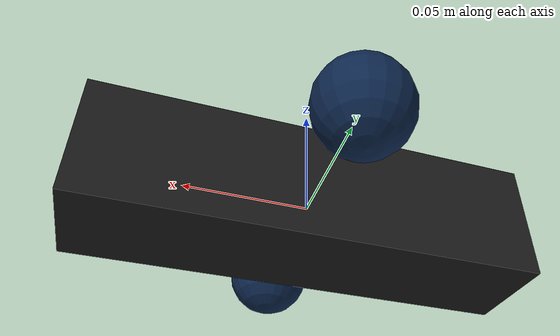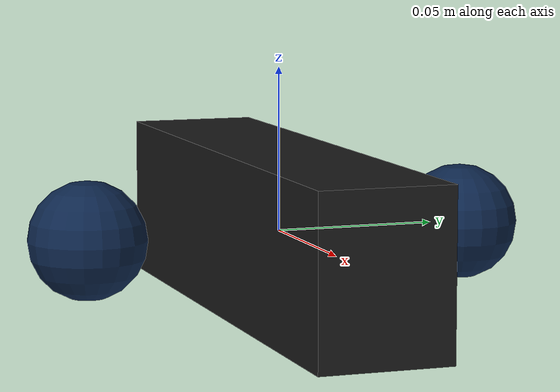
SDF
<?xml version="1.0" ?>
<sdf version="1.6">
  <model name="zed_camera">
    <!-- El modelo lo actualiza gazebo_model_tf_follower.py para que quede
         solidario al TurtleBot. Sin gravedad no cae entre actualizaciones. -->
    <static>false</static>
    <link name="zed_camera_link">
      <gravity>false</gravity>
      <inertial><mass>0.2</mass><inertia><ixx>0.001</ixx><iyy>0.001</iyy><izz>0.001</izz></inertia></inertial>
      <visual name="body">
        <geometry><box><size>0.18 0.04 0.05</size></box></geometry>
        <material><ambient>0.05 0.05 0.05 1</ambient><diffuse>0.1 0.1 0.1 1</diffuse></material>
      </visual>
      <visual name="left_lens">
        <pose>0.0 -0.06 0 0 0 0</pose>
        <geometry><sphere><radius>0.018</radius></sphere></geometry>
        <material><ambient>0.05 0.15 0.3 1</ambient><diffuse>0.05 0.15 0.3 1</diffuse></material>
      </visual>
      <visual name="right_lens">
        <pose>0.0 0.06 0 0 0 0</pose>
        <geometry><sphere><radius>0.018</radius></sphere></geometry>
        <material><ambient>0.05 0.15 0.3 1</ambient><diffuse>0.05 0.15 0.3 1</diffuse></material>
      </visual>
      <sensor name="zed_sim_depth" type="depth">
        <always_on>1</always_on><update_rate>15</update_rate><visualize>true</visualize>
        <camera>
          <horizontal_fov>1.919862</horizontal_fov>
          <image><width>1280</width><height>720</height><format>R8G8B8</format></image>
          <clip><near>0.3</near><far>12.0</far></clip>
        </camera>
        <plugin name="zed_sim_camera_plugin" filename="libgazebo_ros_openni_kinect.so">
          <baseline>0.12</baseline><alwaysOn>true</alwaysOn><updateRate>0.0</updateRate>
          <cameraName>zed_sim</cameraName><frameName>zed_sim_camera_optical_frame</frameName>
          <imageTopicName>/zed_sim/rgb/image_rect_color</imageTopicName>
          <cameraInfoTopicName>/zed_sim/rgb/camera_info</cameraInfoTopicName>
          <depthImageTopicName>/zed_sim/depth/depth_registered</depthImageTopicName>
          <depthImageCameraInfoTopicName>/zed_sim/depth/camera_info</depthImageCameraInfoTopicName>
          <pointCloudTopicName>/zed_sim/point_cloud/cloud_registered</pointCloudTopicName>
          <pointCloudCutoff>0.3</pointCloudCutoff><pointCloudCutoffMax>12.0</pointCloudCutoffMax>
        </plugin>
      </sensor>
    </link>
  </model>
</sdf>
